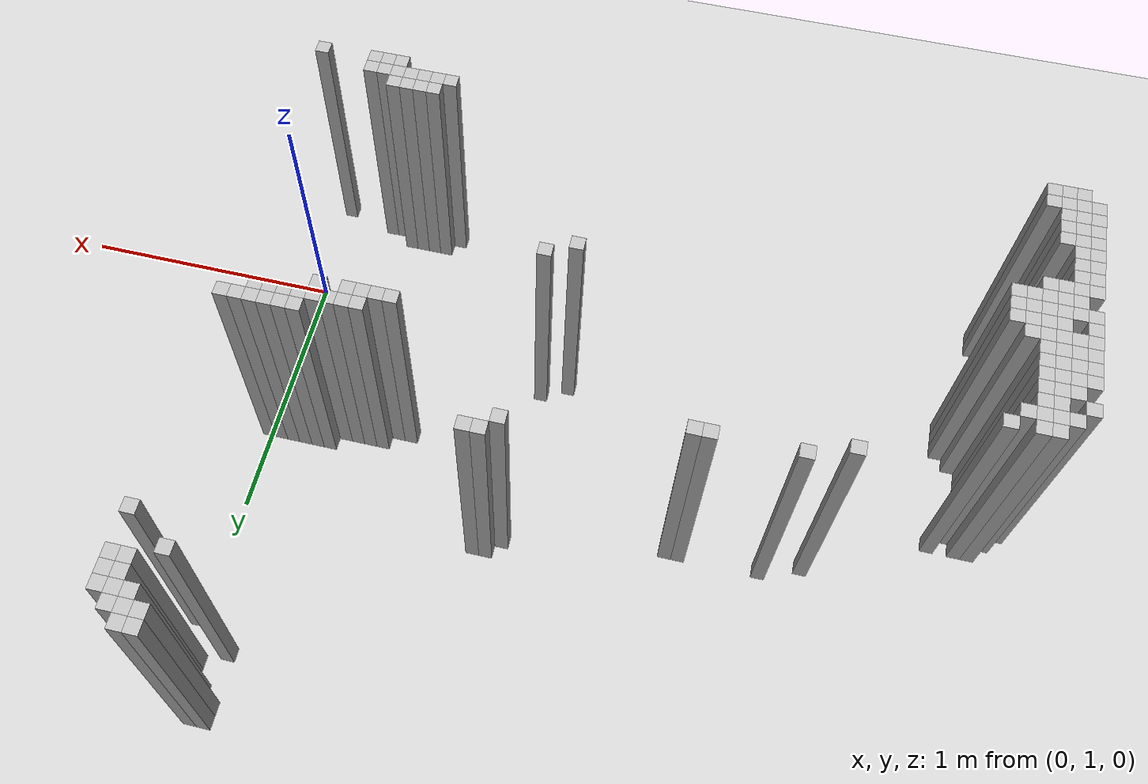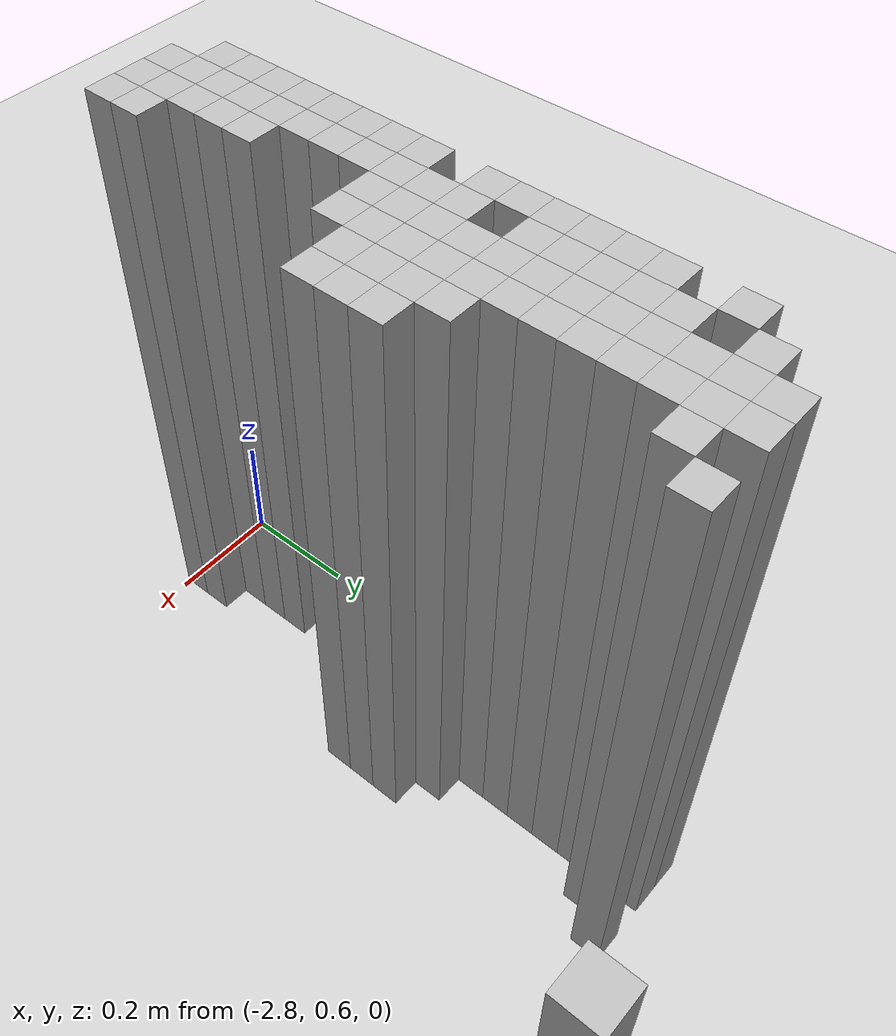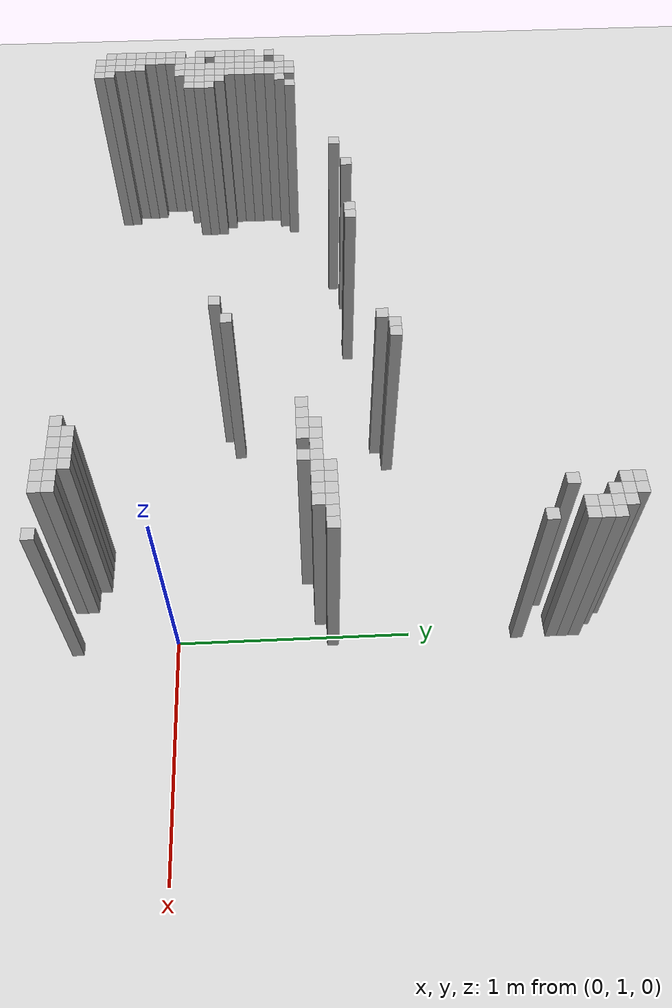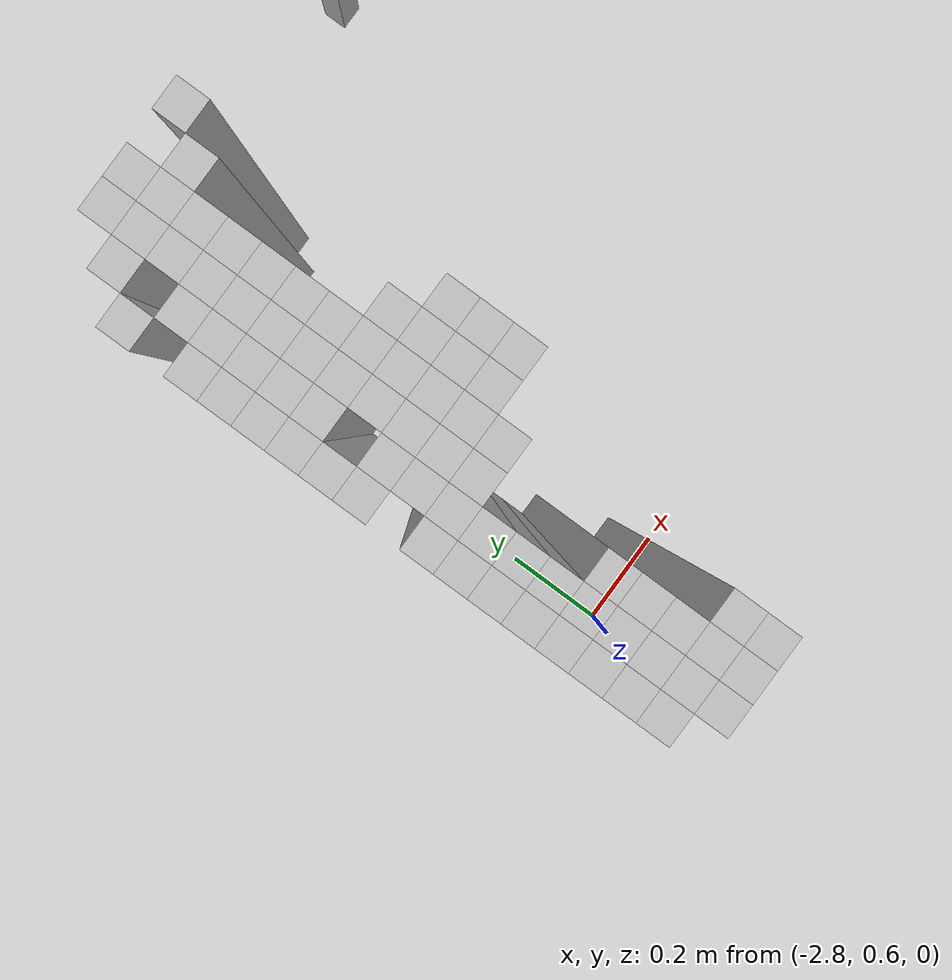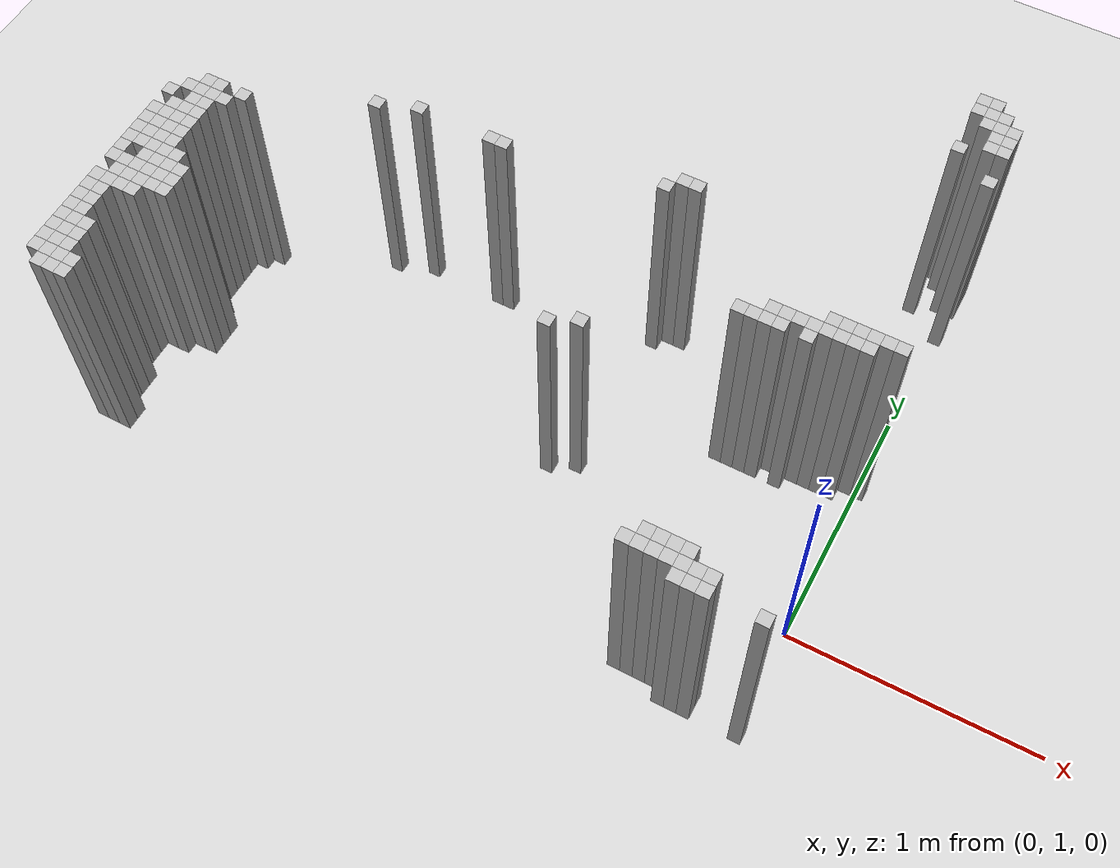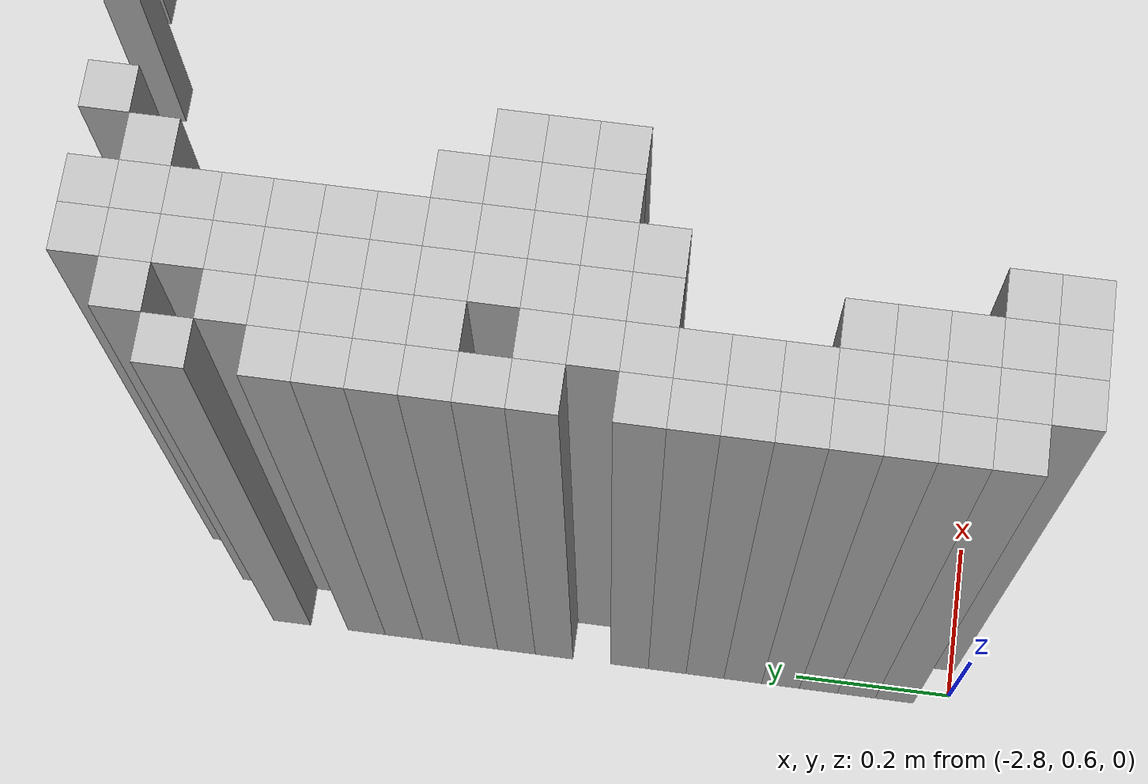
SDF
<sdf version="1.6">
 <world name="default">
  <include><uri>model://ground_plane</uri></include>
  <include><uri>model://sun</uri></include>
  <model name="wall_21">
   <static>true</static>
   <pose>-0.13999999999999968 2.82 0.5 0 0 0</pose>
   <link name="link">
    <collision name="collision"><geometry><box><size>0.05 0.05 1</size></box></geometry></collision>
    <visual name="visual"><geometry><box><size>0.05 0.05 1</size></box></geometry></visual>
   </link>
  </model>
  <model name="wall_22">
   <static>true</static>
   <pose>-0.08999999999999986 2.82 0.5 0 0 0</pose>
   <link name="link">
    <collision name="collision"><geometry><box><size>0.05 0.05 1</size></box></geometry></collision>
    <visual name="visual"><geometry><box><size>0.05 0.05 1</size></box></geometry></visual>
   </link>
  </model>
  <model name="wall_24">
   <static>true</static>
   <pose>-0.13999999999999968 2.77 0.5 0 0 0</pose>
   <link name="link">
    <collision name="collision"><geometry><box><size>0.05 0.05 1</size></box></geometry></collision>
    <visual name="visual"><geometry><box><size>0.05 0.05 1</size></box></geometry></visual>
   </link>
  </model>
  <model name="wall_25">
   <static>true</static>
   <pose>-0.08999999999999986 2.77 0.5 0 0 0</pose>
   <link name="link">
    <collision name="collision"><geometry><box><size>0.05 0.05 1</size></box></geometry></collision>
    <visual name="visual"><geometry><box><size>0.05 0.05 1</size></box></geometry></visual>
   </link>
  </model>
  <model name="wall_26">
   <static>true</static>
   <pose>-0.03999999999999959 2.77 0.5 0 0 0</pose>
   <link name="link">
    <collision name="collision"><geometry><box><size>0.05 0.05 1</size></box></geometry></collision>
    <visual name="visual"><geometry><box><size>0.05 0.05 1</size></box></geometry></visual>
   </link>
  </model>
  <model name="wall_30">
   <static>true</static>
   <pose>-0.08999999999999986 2.72 0.5 0 0 0</pose>
   <link name="link">
    <collision name="collision"><geometry><box><size>0.05 0.05 1</size></box></geometry></collision>
    <visual name="visual"><geometry><box><size>0.05 0.05 1</size></box></geometry></visual>
   </link>
  </model>
  <model name="wall_31">
   <static>true</static>
   <pose>-0.03999999999999959 2.72 0.5 0 0 0</pose>
   <link name="link">
    <collision name="collision"><geometry><box><size>0.05 0.05 1</size></box></geometry></collision>
    <visual name="visual"><geometry><box><size>0.05 0.05 1</size></box></geometry></visual>
   </link>
  </model>
  <model name="wall_32">
   <static>true</static>
   <pose>0.010000000000000231 2.72 0.5 0 0 0</pose>
   <link name="link">
    <collision name="collision"><geometry><box><size>0.05 0.05 1</size></box></geometry></collision>
    <visual name="visual"><geometry><box><size>0.05 0.05 1</size></box></geometry></visual>
   </link>
  </model>
  <model name="wall_34">
   <static>true</static>
   <pose>-0.03999999999999959 2.6700000000000004 0.5 0 0 0</pose>
   <link name="link">
    <collision name="collision"><geometry><box><size>0.05 0.05 1</size></box></geometry></collision>
    <visual name="visual"><geometry><box><size>0.05 0.05 1</size></box></geometry></visual>
   </link>
  </model>
  <model name="wall_35">
   <static>true</static>
   <pose>0.010000000000000231 2.6700000000000004 0.5 0 0 0</pose>
   <link name="link">
    <collision name="collision"><geometry><box><size>0.05 0.05 1</size></box></geometry></collision>
    <visual name="visual"><geometry><box><size>0.05 0.05 1</size></box></geometry></visual>
   </link>
  </model>
  <model name="wall_39">
   <static>true</static>
   <pose>-0.03999999999999959 2.6200000000000006 0.5 0 0 0</pose>
   <link name="link">
    <collision name="collision"><geometry><box><size>0.05 0.05 1</size></box></geometry></collision>
    <visual name="visual"><geometry><box><size>0.05 0.05 1</size></box></geometry></visual>
   </link>
  </model>
  <model name="wall_40">
   <static>true</static>
   <pose>0.010000000000000231 2.6200000000000006 0.5 0 0 0</pose>
   <link name="link">
    <collision name="collision"><geometry><box><size>0.05 0.05 1</size></box></geometry></collision>
    <visual name="visual"><geometry><box><size>0.05 0.05 1</size></box></geometry></visual>
   </link>
  </model>
  <model name="wall_41">
   <static>true</static>
   <pose>-0.13999999999999968 2.57 0.5 0 0 0</pose>
   <link name="link">
    <collision name="collision"><geometry><box><size>0.05 0.05 1</size></box></geometry></collision>
    <visual name="visual"><geometry><box><size>0.05 0.05 1</size></box></geometry></visual>
   </link>
  </model>
  <model name="wall_49">
   <static>true</static>
   <pose>0.010000000000000231 2.47 0.5 0 0 0</pose>
   <link name="link">
    <collision name="collision"><geometry><box><size>0.05 0.05 1</size></box></geometry></collision>
    <visual name="visual"><geometry><box><size>0.05 0.05 1</size></box></geometry></visual>
   </link>
  </model>
  <model name="wall_59">
   <static>true</static>
   <pose>-0.9399999999999997 1.9700000000000002 0.5 0 0 0</pose>
   <link name="link">
    <collision name="collision"><geometry><box><size>0.05 0.05 1</size></box></geometry></collision>
    <visual name="visual"><geometry><box><size>0.05 0.05 1</size></box></geometry></visual>
   </link>
  </model>
  <model name="wall_60">
   <static>true</static>
   <pose>-0.8899999999999997 1.9700000000000002 0.5 0 0 0</pose>
   <link name="link">
    <collision name="collision"><geometry><box><size>0.05 0.05 1</size></box></geometry></collision>
    <visual name="visual"><geometry><box><size>0.05 0.05 1</size></box></geometry></visual>
   </link>
  </model>
  <model name="wall_61">
   <static>true</static>
   <pose>-0.9899999999999998 1.9200000000000004 0.5 0 0 0</pose>
   <link name="link">
    <collision name="collision"><geometry><box><size>0.05 0.05 1</size></box></geometry></collision>
    <visual name="visual"><geometry><box><size>0.05 0.05 1</size></box></geometry></visual>
   </link>
  </model>
  <model name="wall_62">
   <static>true</static>
   <pose>-1.94 1.8199999999999998 0.5 0 0 0</pose>
   <link name="link">
    <collision name="collision"><geometry><box><size>0.05 0.05 1</size></box></geometry></collision>
    <visual name="visual"><geometry><box><size>0.05 0.05 1</size></box></geometry></visual>
   </link>
  </model>
  <model name="wall_63">
   <static>true</static>
   <pose>-1.6399999999999997 1.8199999999999998 0.5 0 0 0</pose>
   <link name="link">
    <collision name="collision"><geometry><box><size>0.05 0.05 1</size></box></geometry></collision>
    <visual name="visual"><geometry><box><size>0.05 0.05 1</size></box></geometry></visual>
   </link>
  </model>
  <model name="wall_64">
   <static>true</static>
   <pose>-1.5899999999999999 1.8199999999999998 0.5 0 0 0</pose>
   <link name="link">
    <collision name="collision"><geometry><box><size>0.05 0.05 1</size></box></geometry></collision>
    <visual name="visual"><geometry><box><size>0.05 0.05 1</size></box></geometry></visual>
   </link>
  </model>
  <model name="wall_71">
   <static>true</static>
   <pose>-2.09 1.77 0.5 0 0 0</pose>
   <link name="link">
    <collision name="collision"><geometry><box><size>0.05 0.05 1</size></box></geometry></collision>
    <visual name="visual"><geometry><box><size>0.05 0.05 1</size></box></geometry></visual>
   </link>
  </model>
  <model name="wall_82">
   <static>true</static>
   <pose>-0.23999999999999977 1.67 0.5 0 0 0</pose>
   <link name="link">
    <collision name="collision"><geometry><box><size>0.05 0.05 1</size></box></geometry></collision>
    <visual name="visual"><geometry><box><size>0.05 0.05 1</size></box></geometry></visual>
   </link>
  </model>
  <model name="wall_83">
   <static>true</static>
   <pose>-0.1899999999999995 1.67 0.5 0 0 0</pose>
   <link name="link">
    <collision name="collision"><geometry><box><size>0.05 0.05 1</size></box></geometry></collision>
    <visual name="visual"><geometry><box><size>0.05 0.05 1</size></box></geometry></visual>
   </link>
  </model>
  <model name="wall_84">
   <static>true</static>
   <pose>-0.13999999999999968 1.67 0.5 0 0 0</pose>
   <link name="link">
    <collision name="collision"><geometry><box><size>0.05 0.05 1</size></box></geometry></collision>
    <visual name="visual"><geometry><box><size>0.05 0.05 1</size></box></geometry></visual>
   </link>
  </model>
  <model name="wall_85">
   <static>true</static>
   <pose>-0.08999999999999986 1.67 0.5 0 0 0</pose>
   <link name="link">
    <collision name="collision"><geometry><box><size>0.05 0.05 1</size></box></geometry></collision>
    <visual name="visual"><geometry><box><size>0.05 0.05 1</size></box></geometry></visual>
   </link>
  </model>
  <model name="wall_86">
   <static>true</static>
   <pose>-0.03999999999999959 1.67 0.5 0 0 0</pose>
   <link name="link">
    <collision name="collision"><geometry><box><size>0.05 0.05 1</size></box></geometry></collision>
    <visual name="visual"><geometry><box><size>0.05 0.05 1</size></box></geometry></visual>
   </link>
  </model>
  <model name="wall_87">
   <static>true</static>
   <pose>0.010000000000000231 1.67 0.5 0 0 0</pose>
   <link name="link">
    <collision name="collision"><geometry><box><size>0.05 0.05 1</size></box></geometry></collision>
    <visual name="visual"><geometry><box><size>0.05 0.05 1</size></box></geometry></visual>
   </link>
  </model>
  <model name="wall_89">
   <static>true</static>
   <pose>-0.4399999999999995 1.62 0.5 0 0 0</pose>
   <link name="link">
    <collision name="collision"><geometry><box><size>0.05 0.05 1</size></box></geometry></collision>
    <visual name="visual"><geometry><box><size>0.05 0.05 1</size></box></geometry></visual>
   </link>
  </model>
  <model name="wall_90">
   <static>true</static>
   <pose>-0.3899999999999997 1.62 0.5 0 0 0</pose>
   <link name="link">
    <collision name="collision"><geometry><box><size>0.05 0.05 1</size></box></geometry></collision>
    <visual name="visual"><geometry><box><size>0.05 0.05 1</size></box></geometry></visual>
   </link>
  </model>
  <model name="wall_91">
   <static>true</static>
   <pose>-0.33999999999999986 1.62 0.5 0 0 0</pose>
   <link name="link">
    <collision name="collision"><geometry><box><size>0.05 0.05 1</size></box></geometry></collision>
    <visual name="visual"><geometry><box><size>0.05 0.05 1</size></box></geometry></visual>
   </link>
  </model>
  <model name="wall_92">
   <static>true</static>
   <pose>-0.2899999999999996 1.62 0.5 0 0 0</pose>
   <link name="link">
    <collision name="collision"><geometry><box><size>0.05 0.05 1</size></box></geometry></collision>
    <visual name="visual"><geometry><box><size>0.05 0.05 1</size></box></geometry></visual>
   </link>
  </model>
  <model name="wall_93">
   <static>true</static>
   <pose>-0.23999999999999977 1.62 0.5 0 0 0</pose>
   <link name="link">
    <collision name="collision"><geometry><box><size>0.05 0.05 1</size></box></geometry></collision>
    <visual name="visual"><geometry><box><size>0.05 0.05 1</size></box></geometry></visual>
   </link>
  </model>
  <model name="wall_94">
   <static>true</static>
   <pose>-0.1899999999999995 1.62 0.5 0 0 0</pose>
   <link name="link">
    <collision name="collision"><geometry><box><size>0.05 0.05 1</size></box></geometry></collision>
    <visual name="visual"><geometry><box><size>0.05 0.05 1</size></box></geometry></visual>
   </link>
  </model>
  <model name="wall_95">
   <static>true</static>
   <pose>-0.13999999999999968 1.62 0.5 0 0 0</pose>
   <link name="link">
    <collision name="collision"><geometry><box><size>0.05 0.05 1</size></box></geometry></collision>
    <visual name="visual"><geometry><box><size>0.05 0.05 1</size></box></geometry></visual>
   </link>
  </model>
  <model name="wall_96">
   <static>true</static>
   <pose>-0.08999999999999986 1.62 0.5 0 0 0</pose>
   <link name="link">
    <collision name="collision"><geometry><box><size>0.05 0.05 1</size></box></geometry></collision>
    <visual name="visual"><geometry><box><size>0.05 0.05 1</size></box></geometry></visual>
   </link>
  </model>
  <model name="wall_97">
   <static>true</static>
   <pose>-2.69 1.5699999999999998 0.5 0 0 0</pose>
   <link name="link">
    <collision name="collision"><geometry><box><size>0.05 0.05 1</size></box></geometry></collision>
    <visual name="visual"><geometry><box><size>0.05 0.05 1</size></box></geometry></visual>
   </link>
  </model>
  <model name="wall_98">
   <static>true</static>
   <pose>-2.6399999999999997 1.5699999999999998 0.5 0 0 0</pose>
   <link name="link">
    <collision name="collision"><geometry><box><size>0.05 0.05 1</size></box></geometry></collision>
    <visual name="visual"><geometry><box><size>0.05 0.05 1</size></box></geometry></visual>
   </link>
  </model>
  <model name="wall_99">
   <static>true</static>
   <pose>-2.54 1.5699999999999998 0.5 0 0 0</pose>
   <link name="link">
    <collision name="collision"><geometry><box><size>0.05 0.05 1</size></box></geometry></collision>
    <visual name="visual"><geometry><box><size>0.05 0.05 1</size></box></geometry></visual>
   </link>
  </model>
  <model name="wall_100">
   <static>true</static>
   <pose>-0.5399999999999996 1.5699999999999998 0.5 0 0 0</pose>
   <link name="link">
    <collision name="collision"><geometry><box><size>0.05 0.05 1</size></box></geometry></collision>
    <visual name="visual"><geometry><box><size>0.05 0.05 1</size></box></geometry></visual>
   </link>
  </model>
  <model name="wall_101">
   <static>true</static>
   <pose>-0.48999999999999977 1.5699999999999998 0.5 0 0 0</pose>
   <link name="link">
    <collision name="collision"><geometry><box><size>0.05 0.05 1</size></box></geometry></collision>
    <visual name="visual"><geometry><box><size>0.05 0.05 1</size></box></geometry></visual>
   </link>
  </model>
  <model name="wall_102">
   <static>true</static>
   <pose>-0.4399999999999995 1.5699999999999998 0.5 0 0 0</pose>
   <link name="link">
    <collision name="collision"><geometry><box><size>0.05 0.05 1</size></box></geometry></collision>
    <visual name="visual"><geometry><box><size>0.05 0.05 1</size></box></geometry></visual>
   </link>
  </model>
  <model name="wall_103">
   <static>true</static>
   <pose>-0.3899999999999997 1.5699999999999998 0.5 0 0 0</pose>
   <link name="link">
    <collision name="collision"><geometry><box><size>0.05 0.05 1</size></box></geometry></collision>
    <visual name="visual"><geometry><box><size>0.05 0.05 1</size></box></geometry></visual>
   </link>
  </model>
  <model name="wall_104">
   <static>true</static>
   <pose>-0.2899999999999996 1.5699999999999998 0.5 0 0 0</pose>
   <link name="link">
    <collision name="collision"><geometry><box><size>0.05 0.05 1</size></box></geometry></collision>
    <visual name="visual"><geometry><box><size>0.05 0.05 1</size></box></geometry></visual>
   </link>
  </model>
  <model name="wall_105">
   <static>true</static>
   <pose>-2.7399999999999998 1.52 0.5 0 0 0</pose>
   <link name="link">
    <collision name="collision"><geometry><box><size>0.05 0.05 1</size></box></geometry></collision>
    <visual name="visual"><geometry><box><size>0.05 0.05 1</size></box></geometry></visual>
   </link>
  </model>
  <model name="wall_106">
   <static>true</static>
   <pose>-2.69 1.52 0.5 0 0 0</pose>
   <link name="link">
    <collision name="collision"><geometry><box><size>0.05 0.05 1</size></box></geometry></collision>
    <visual name="visual"><geometry><box><size>0.05 0.05 1</size></box></geometry></visual>
   </link>
  </model>
  <model name="wall_107">
   <static>true</static>
   <pose>-2.6399999999999997 1.52 0.5 0 0 0</pose>
   <link name="link">
    <collision name="collision"><geometry><box><size>0.05 0.05 1</size></box></geometry></collision>
    <visual name="visual"><geometry><box><size>0.05 0.05 1</size></box></geometry></visual>
   </link>
  </model>
  <model name="wall_108">
   <static>true</static>
   <pose>-2.59 1.52 0.5 0 0 0</pose>
   <link name="link">
    <collision name="collision"><geometry><box><size>0.05 0.05 1</size></box></geometry></collision>
    <visual name="visual"><geometry><box><size>0.05 0.05 1</size></box></geometry></visual>
   </link>
  </model>
  <model name="wall_109">
   <static>true</static>
   <pose>-2.79 1.4700000000000002 0.5 0 0 0</pose>
   <link name="link">
    <collision name="collision"><geometry><box><size>0.05 0.05 1</size></box></geometry></collision>
    <visual name="visual"><geometry><box><size>0.05 0.05 1</size></box></geometry></visual>
   </link>
  </model>
  <model name="wall_110">
   <static>true</static>
   <pose>-2.69 1.4700000000000002 0.5 0 0 0</pose>
   <link name="link">
    <collision name="collision"><geometry><box><size>0.05 0.05 1</size></box></geometry></collision>
    <visual name="visual"><geometry><box><size>0.05 0.05 1</size></box></geometry></visual>
   </link>
  </model>
  <model name="wall_111">
   <static>true</static>
   <pose>-2.6399999999999997 1.4700000000000002 0.5 0 0 0</pose>
   <link name="link">
    <collision name="collision"><geometry><box><size>0.05 0.05 1</size></box></geometry></collision>
    <visual name="visual"><geometry><box><size>0.05 0.05 1</size></box></geometry></visual>
   </link>
  </model>
  <model name="wall_112">
   <static>true</static>
   <pose>-2.7399999999999998 1.42 0.5 0 0 0</pose>
   <link name="link">
    <collision name="collision"><geometry><box><size>0.05 0.05 1</size></box></geometry></collision>
    <visual name="visual"><geometry><box><size>0.05 0.05 1</size></box></geometry></visual>
   </link>
  </model>
  <model name="wall_113">
   <static>true</static>
   <pose>-2.69 1.42 0.5 0 0 0</pose>
   <link name="link">
    <collision name="collision"><geometry><box><size>0.05 0.05 1</size></box></geometry></collision>
    <visual name="visual"><geometry><box><size>0.05 0.05 1</size></box></geometry></visual>
   </link>
  </model>
  <model name="wall_114">
   <static>true</static>
   <pose>-2.6399999999999997 1.42 0.5 0 0 0</pose>
   <link name="link">
    <collision name="collision"><geometry><box><size>0.05 0.05 1</size></box></geometry></collision>
    <visual name="visual"><geometry><box><size>0.05 0.05 1</size></box></geometry></visual>
   </link>
  </model>
  <model name="wall_115">
   <static>true</static>
   <pose>-2.79 1.37 0.5 0 0 0</pose>
   <link name="link">
    <collision name="collision"><geometry><box><size>0.05 0.05 1</size></box></geometry></collision>
    <visual name="visual"><geometry><box><size>0.05 0.05 1</size></box></geometry></visual>
   </link>
  </model>
  <model name="wall_116">
   <static>true</static>
   <pose>-2.7399999999999998 1.37 0.5 0 0 0</pose>
   <link name="link">
    <collision name="collision"><geometry><box><size>0.05 0.05 1</size></box></geometry></collision>
    <visual name="visual"><geometry><box><size>0.05 0.05 1</size></box></geometry></visual>
   </link>
  </model>
  <model name="wall_117">
   <static>true</static>
   <pose>-2.69 1.37 0.5 0 0 0</pose>
   <link name="link">
    <collision name="collision"><geometry><box><size>0.05 0.05 1</size></box></geometry></collision>
    <visual name="visual"><geometry><box><size>0.05 0.05 1</size></box></geometry></visual>
   </link>
  </model>
  <model name="wall_118">
   <static>true</static>
   <pose>-2.6399999999999997 1.37 0.5 0 0 0</pose>
   <link name="link">
    <collision name="collision"><geometry><box><size>0.05 0.05 1</size></box></geometry></collision>
    <visual name="visual"><geometry><box><size>0.05 0.05 1</size></box></geometry></visual>
   </link>
  </model>
  <model name="wall_119">
   <static>true</static>
   <pose>-2.79 1.3199999999999998 0.5 0 0 0</pose>
   <link name="link">
    <collision name="collision"><geometry><box><size>0.05 0.05 1</size></box></geometry></collision>
    <visual name="visual"><geometry><box><size>0.05 0.05 1</size></box></geometry></visual>
   </link>
  </model>
  <model name="wall_120">
   <static>true</static>
   <pose>-2.7399999999999998 1.3199999999999998 0.5 0 0 0</pose>
   <link name="link">
    <collision name="collision"><geometry><box><size>0.05 0.05 1</size></box></geometry></collision>
    <visual name="visual"><geometry><box><size>0.05 0.05 1</size></box></geometry></visual>
   </link>
  </model>
  <model name="wall_121">
   <static>true</static>
   <pose>-2.69 1.3199999999999998 0.5 0 0 0</pose>
   <link name="link">
    <collision name="collision"><geometry><box><size>0.05 0.05 1</size></box></geometry></collision>
    <visual name="visual"><geometry><box><size>0.05 0.05 1</size></box></geometry></visual>
   </link>
  </model>
  <model name="wall_122">
   <static>true</static>
   <pose>-2.6399999999999997 1.3199999999999998 0.5 0 0 0</pose>
   <link name="link">
    <collision name="collision"><geometry><box><size>0.05 0.05 1</size></box></geometry></collision>
    <visual name="visual"><geometry><box><size>0.05 0.05 1</size></box></geometry></visual>
   </link>
  </model>
  <model name="wall_123">
   <static>true</static>
   <pose>-2.79 1.27 0.5 0 0 0</pose>
   <link name="link">
    <collision name="collision"><geometry><box><size>0.05 0.05 1</size></box></geometry></collision>
    <visual name="visual"><geometry><box><size>0.05 0.05 1</size></box></geometry></visual>
   </link>
  </model>
  <model name="wall_124">
   <static>true</static>
   <pose>-2.7399999999999998 1.27 0.5 0 0 0</pose>
   <link name="link">
    <collision name="collision"><geometry><box><size>0.05 0.05 1</size></box></geometry></collision>
    <visual name="visual"><geometry><box><size>0.05 0.05 1</size></box></geometry></visual>
   </link>
  </model>
  <model name="wall_125">
   <static>true</static>
   <pose>-2.69 1.27 0.5 0 0 0</pose>
   <link name="link">
    <collision name="collision"><geometry><box><size>0.05 0.05 1</size></box></geometry></collision>
    <visual name="visual"><geometry><box><size>0.05 0.05 1</size></box></geometry></visual>
   </link>
  </model>
  <model name="wall_126">
   <static>true</static>
   <pose>-2.6399999999999997 1.27 0.5 0 0 0</pose>
   <link name="link">
    <collision name="collision"><geometry><box><size>0.05 0.05 1</size></box></geometry></collision>
    <visual name="visual"><geometry><box><size>0.05 0.05 1</size></box></geometry></visual>
   </link>
  </model>
  <model name="wall_127">
   <static>true</static>
   <pose>-0.9899999999999998 1.27 0.5 0 0 0</pose>
   <link name="link">
    <collision name="collision"><geometry><box><size>0.05 0.05 1</size></box></geometry></collision>
    <visual name="visual"><geometry><box><size>0.05 0.05 1</size></box></geometry></visual>
   </link>
  </model>
  <model name="wall_128">
   <static>true</static>
   <pose>-2.79 1.2200000000000002 0.5 0 0 0</pose>
   <link name="link">
    <collision name="collision"><geometry><box><size>0.05 0.05 1</size></box></geometry></collision>
    <visual name="visual"><geometry><box><size>0.05 0.05 1</size></box></geometry></visual>
   </link>
  </model>
  <model name="wall_129">
   <static>true</static>
   <pose>-2.7399999999999998 1.2200000000000002 0.5 0 0 0</pose>
   <link name="link">
    <collision name="collision"><geometry><box><size>0.05 0.05 1</size></box></geometry></collision>
    <visual name="visual"><geometry><box><size>0.05 0.05 1</size></box></geometry></visual>
   </link>
  </model>
  <model name="wall_130">
   <static>true</static>
   <pose>-2.69 1.2200000000000002 0.5 0 0 0</pose>
   <link name="link">
    <collision name="collision"><geometry><box><size>0.05 0.05 1</size></box></geometry></collision>
    <visual name="visual"><geometry><box><size>0.05 0.05 1</size></box></geometry></visual>
   </link>
  </model>
  <model name="wall_131">
   <static>true</static>
   <pose>-2.6399999999999997 1.2200000000000002 0.5 0 0 0</pose>
   <link name="link">
    <collision name="collision"><geometry><box><size>0.05 0.05 1</size></box></geometry></collision>
    <visual name="visual"><geometry><box><size>0.05 0.05 1</size></box></geometry></visual>
   </link>
  </model>
  <model name="wall_132">
   <static>true</static>
   <pose>-2.59 1.2200000000000002 0.5 0 0 0</pose>
   <link name="link">
    <collision name="collision"><geometry><box><size>0.05 0.05 1</size></box></geometry></collision>
    <visual name="visual"><geometry><box><size>0.05 0.05 1</size></box></geometry></visual>
   </link>
  </model>
  <model name="wall_133">
   <static>true</static>
   <pose>-1.0899999999999999 1.2200000000000002 0.5 0 0 0</pose>
   <link name="link">
    <collision name="collision"><geometry><box><size>0.05 0.05 1</size></box></geometry></collision>
    <visual name="visual"><geometry><box><size>0.05 0.05 1</size></box></geometry></visual>
   </link>
  </model>
  <model name="wall_134">
   <static>true</static>
   <pose>-2.79 1.17 0.5 0 0 0</pose>
   <link name="link">
    <collision name="collision"><geometry><box><size>0.05 0.05 1</size></box></geometry></collision>
    <visual name="visual"><geometry><box><size>0.05 0.05 1</size></box></geometry></visual>
   </link>
  </model>
  <model name="wall_135">
   <static>true</static>
   <pose>-2.69 1.17 0.5 0 0 0</pose>
   <link name="link">
    <collision name="collision"><geometry><box><size>0.05 0.05 1</size></box></geometry></collision>
    <visual name="visual"><geometry><box><size>0.05 0.05 1</size></box></geometry></visual>
   </link>
  </model>
  <model name="wall_136">
   <static>true</static>
   <pose>-2.6399999999999997 1.17 0.5 0 0 0</pose>
   <link name="link">
    <collision name="collision"><geometry><box><size>0.05 0.05 1</size></box></geometry></collision>
    <visual name="visual"><geometry><box><size>0.05 0.05 1</size></box></geometry></visual>
   </link>
  </model>
  <model name="wall_137">
   <static>true</static>
   <pose>-2.59 1.17 0.5 0 0 0</pose>
   <link name="link">
    <collision name="collision"><geometry><box><size>0.05 0.05 1</size></box></geometry></collision>
    <visual name="visual"><geometry><box><size>0.05 0.05 1</size></box></geometry></visual>
   </link>
  </model>
  <model name="wall_138">
   <static>true</static>
   <pose>-2.54 1.17 0.5 0 0 0</pose>
   <link name="link">
    <collision name="collision"><geometry><box><size>0.05 0.05 1</size></box></geometry></collision>
    <visual name="visual"><geometry><box><size>0.05 0.05 1</size></box></geometry></visual>
   </link>
  </model>
  <model name="wall_139">
   <static>true</static>
   <pose>-2.79 1.12 0.5 0 0 0</pose>
   <link name="link">
    <collision name="collision"><geometry><box><size>0.05 0.05 1</size></box></geometry></collision>
    <visual name="visual"><geometry><box><size>0.05 0.05 1</size></box></geometry></visual>
   </link>
  </model>
  <model name="wall_140">
   <static>true</static>
   <pose>-2.7399999999999998 1.12 0.5 0 0 0</pose>
   <link name="link">
    <collision name="collision"><geometry><box><size>0.05 0.05 1</size></box></geometry></collision>
    <visual name="visual"><geometry><box><size>0.05 0.05 1</size></box></geometry></visual>
   </link>
  </model>
  <model name="wall_141">
   <static>true</static>
   <pose>-2.69 1.12 0.5 0 0 0</pose>
   <link name="link">
    <collision name="collision"><geometry><box><size>0.05 0.05 1</size></box></geometry></collision>
    <visual name="visual"><geometry><box><size>0.05 0.05 1</size></box></geometry></visual>
   </link>
  </model>
  <model name="wall_142">
   <static>true</static>
   <pose>-2.6399999999999997 1.12 0.5 0 0 0</pose>
   <link name="link">
    <collision name="collision"><geometry><box><size>0.05 0.05 1</size></box></geometry></collision>
    <visual name="visual"><geometry><box><size>0.05 0.05 1</size></box></geometry></visual>
   </link>
  </model>
  <model name="wall_143">
   <static>true</static>
   <pose>-2.59 1.12 0.5 0 0 0</pose>
   <link name="link">
    <collision name="collision"><geometry><box><size>0.05 0.05 1</size></box></geometry></collision>
    <visual name="visual"><geometry><box><size>0.05 0.05 1</size></box></geometry></visual>
   </link>
  </model>
  <model name="wall_144">
   <static>true</static>
   <pose>-2.54 1.12 0.5 0 0 0</pose>
   <link name="link">
    <collision name="collision"><geometry><box><size>0.05 0.05 1</size></box></geometry></collision>
    <visual name="visual"><geometry><box><size>0.05 0.05 1</size></box></geometry></visual>
   </link>
  </model>
  <model name="wall_146">
   <static>true</static>
   <pose>-2.7399999999999998 1.0699999999999998 0.5 0 0 0</pose>
   <link name="link">
    <collision name="collision"><geometry><box><size>0.05 0.05 1</size></box></geometry></collision>
    <visual name="visual"><geometry><box><size>0.05 0.05 1</size></box></geometry></visual>
   </link>
  </model>
  <model name="wall_147">
   <static>true</static>
   <pose>-2.69 1.0699999999999998 0.5 0 0 0</pose>
   <link name="link">
    <collision name="collision"><geometry><box><size>0.05 0.05 1</size></box></geometry></collision>
    <visual name="visual"><geometry><box><size>0.05 0.05 1</size></box></geometry></visual>
   </link>
  </model>
  <model name="wall_148">
   <static>true</static>
   <pose>-2.6399999999999997 1.0699999999999998 0.5 0 0 0</pose>
   <link name="link">
    <collision name="collision"><geometry><box><size>0.05 0.05 1</size></box></geometry></collision>
    <visual name="visual"><geometry><box><size>0.05 0.05 1</size></box></geometry></visual>
   </link>
  </model>
  <model name="wall_149">
   <static>true</static>
   <pose>-2.59 1.0699999999999998 0.5 0 0 0</pose>
   <link name="link">
    <collision name="collision"><geometry><box><size>0.05 0.05 1</size></box></geometry></collision>
    <visual name="visual"><geometry><box><size>0.05 0.05 1</size></box></geometry></visual>
   </link>
  </model>
  <model name="wall_150">
   <static>true</static>
   <pose>-2.54 1.0699999999999998 0.5 0 0 0</pose>
   <link name="link">
    <collision name="collision"><geometry><box><size>0.05 0.05 1</size></box></geometry></collision>
    <visual name="visual"><geometry><box><size>0.05 0.05 1</size></box></geometry></visual>
   </link>
  </model>
  <model name="wall_152">
   <static>true</static>
   <pose>-2.79 1.02 0.5 0 0 0</pose>
   <link name="link">
    <collision name="collision"><geometry><box><size>0.05 0.05 1</size></box></geometry></collision>
    <visual name="visual"><geometry><box><size>0.05 0.05 1</size></box></geometry></visual>
   </link>
  </model>
  <model name="wall_153">
   <static>true</static>
   <pose>-2.7399999999999998 1.02 0.5 0 0 0</pose>
   <link name="link">
    <collision name="collision"><geometry><box><size>0.05 0.05 1</size></box></geometry></collision>
    <visual name="visual"><geometry><box><size>0.05 0.05 1</size></box></geometry></visual>
   </link>
  </model>
  <model name="wall_154">
   <static>true</static>
   <pose>-2.69 1.02 0.5 0 0 0</pose>
   <link name="link">
    <collision name="collision"><geometry><box><size>0.05 0.05 1</size></box></geometry></collision>
    <visual name="visual"><geometry><box><size>0.05 0.05 1</size></box></geometry></visual>
   </link>
  </model>
  <model name="wall_155">
   <static>true</static>
   <pose>-2.6399999999999997 1.02 0.5 0 0 0</pose>
   <link name="link">
    <collision name="collision"><geometry><box><size>0.05 0.05 1</size></box></geometry></collision>
    <visual name="visual"><geometry><box><size>0.05 0.05 1</size></box></geometry></visual>
   </link>
  </model>
  <model name="wall_158">
   <static>true</static>
   <pose>-2.79 0.9700000000000002 0.5 0 0 0</pose>
   <link name="link">
    <collision name="collision"><geometry><box><size>0.05 0.05 1</size></box></geometry></collision>
    <visual name="visual"><geometry><box><size>0.05 0.05 1</size></box></geometry></visual>
   </link>
  </model>
  <model name="wall_159">
   <static>true</static>
   <pose>-2.7399999999999998 0.9700000000000002 0.5 0 0 0</pose>
   <link name="link">
    <collision name="collision"><geometry><box><size>0.05 0.05 1</size></box></geometry></collision>
    <visual name="visual"><geometry><box><size>0.05 0.05 1</size></box></geometry></visual>
   </link>
  </model>
  <model name="wall_162">
   <static>true</static>
   <pose>-2.79 0.9199999999999999 0.5 0 0 0</pose>
   <link name="link">
    <collision name="collision"><geometry><box><size>0.05 0.05 1</size></box></geometry></collision>
    <visual name="visual"><geometry><box><size>0.05 0.05 1</size></box></geometry></visual>
   </link>
  </model>
  <model name="wall_163">
   <static>true</static>
   <pose>-2.7399999999999998 0.9199999999999999 0.5 0 0 0</pose>
   <link name="link">
    <collision name="collision"><geometry><box><size>0.05 0.05 1</size></box></geometry></collision>
    <visual name="visual"><geometry><box><size>0.05 0.05 1</size></box></geometry></visual>
   </link>
  </model>
  <model name="wall_168">
   <static>true</static>
   <pose>-2.79 0.8700000000000001 0.5 0 0 0</pose>
   <link name="link">
    <collision name="collision"><geometry><box><size>0.05 0.05 1</size></box></geometry></collision>
    <visual name="visual"><geometry><box><size>0.05 0.05 1</size></box></geometry></visual>
   </link>
  </model>
  <model name="wall_169">
   <static>true</static>
   <pose>-2.7399999999999998 0.8700000000000001 0.5 0 0 0</pose>
   <link name="link">
    <collision name="collision"><geometry><box><size>0.05 0.05 1</size></box></geometry></collision>
    <visual name="visual"><geometry><box><size>0.05 0.05 1</size></box></geometry></visual>
   </link>
  </model>
  <model name="wall_175">
   <static>true</static>
   <pose>-2.79 0.8199999999999998 0.5 0 0 0</pose>
   <link name="link">
    <collision name="collision"><geometry><box><size>0.05 0.05 1</size></box></geometry></collision>
    <visual name="visual"><geometry><box><size>0.05 0.05 1</size></box></geometry></visual>
   </link>
  </model>
  <model name="wall_176">
   <static>true</static>
   <pose>-2.7399999999999998 0.8199999999999998 0.5 0 0 0</pose>
   <link name="link">
    <collision name="collision"><geometry><box><size>0.05 0.05 1</size></box></geometry></collision>
    <visual name="visual"><geometry><box><size>0.05 0.05 1</size></box></geometry></visual>
   </link>
  </model>
  <model name="wall_177">
   <static>true</static>
   <pose>-2.69 0.8199999999999998 0.5 0 0 0</pose>
   <link name="link">
    <collision name="collision"><geometry><box><size>0.05 0.05 1</size></box></geometry></collision>
    <visual name="visual"><geometry><box><size>0.05 0.05 1</size></box></geometry></visual>
   </link>
  </model>
  <model name="wall_189">
   <static>true</static>
   <pose>-2.79 0.77 0.5 0 0 0</pose>
   <link name="link">
    <collision name="collision"><geometry><box><size>0.05 0.05 1</size></box></geometry></collision>
    <visual name="visual"><geometry><box><size>0.05 0.05 1</size></box></geometry></visual>
   </link>
  </model>
  <model name="wall_190">
   <static>true</static>
   <pose>-2.7399999999999998 0.77 0.5 0 0 0</pose>
   <link name="link">
    <collision name="collision"><geometry><box><size>0.05 0.05 1</size></box></geometry></collision>
    <visual name="visual"><geometry><box><size>0.05 0.05 1</size></box></geometry></visual>
   </link>
  </model>
  <model name="wall_191">
   <static>true</static>
   <pose>-2.69 0.77 0.5 0 0 0</pose>
   <link name="link">
    <collision name="collision"><geometry><box><size>0.05 0.05 1</size></box></geometry></collision>
    <visual name="visual"><geometry><box><size>0.05 0.05 1</size></box></geometry></visual>
   </link>
  </model>
  <model name="wall_204">
   <static>true</static>
   <pose>-2.79 0.7200000000000002 0.5 0 0 0</pose>
   <link name="link">
    <collision name="collision"><geometry><box><size>0.05 0.05 1</size></box></geometry></collision>
    <visual name="visual"><geometry><box><size>0.05 0.05 1</size></box></geometry></visual>
   </link>
  </model>
  <model name="wall_205">
   <static>true</static>
   <pose>-2.7399999999999998 0.7200000000000002 0.5 0 0 0</pose>
   <link name="link">
    <collision name="collision"><geometry><box><size>0.05 0.05 1</size></box></geometry></collision>
    <visual name="visual"><geometry><box><size>0.05 0.05 1</size></box></geometry></visual>
   </link>
  </model>
  <model name="wall_206">
   <static>true</static>
   <pose>-2.69 0.7200000000000002 0.5 0 0 0</pose>
   <link name="link">
    <collision name="collision"><geometry><box><size>0.05 0.05 1</size></box></geometry></collision>
    <visual name="visual"><geometry><box><size>0.05 0.05 1</size></box></geometry></visual>
   </link>
  </model>
  <model name="wall_215">
   <static>true</static>
   <pose>-2.79 0.6699999999999999 0.5 0 0 0</pose>
   <link name="link">
    <collision name="collision"><geometry><box><size>0.05 0.05 1</size></box></geometry></collision>
    <visual name="visual"><geometry><box><size>0.05 0.05 1</size></box></geometry></visual>
   </link>
  </model>
  <model name="wall_216">
   <static>true</static>
   <pose>-2.7399999999999998 0.6699999999999999 0.5 0 0 0</pose>
   <link name="link">
    <collision name="collision"><geometry><box><size>0.05 0.05 1</size></box></geometry></collision>
    <visual name="visual"><geometry><box><size>0.05 0.05 1</size></box></geometry></visual>
   </link>
  </model>
  <model name="wall_217">
   <static>true</static>
   <pose>-2.69 0.6699999999999999 0.5 0 0 0</pose>
   <link name="link">
    <collision name="collision"><geometry><box><size>0.05 0.05 1</size></box></geometry></collision>
    <visual name="visual"><geometry><box><size>0.05 0.05 1</size></box></geometry></visual>
   </link>
  </model>
  <model name="wall_218">
   <static>true</static>
   <pose>-2.6399999999999997 0.6699999999999999 0.5 0 0 0</pose>
   <link name="link">
    <collision name="collision"><geometry><box><size>0.05 0.05 1</size></box></geometry></collision>
    <visual name="visual"><geometry><box><size>0.05 0.05 1</size></box></geometry></visual>
   </link>
  </model>
  <model name="wall_219">
   <static>true</static>
   <pose>-0.4399999999999995 0.6699999999999999 0.5 0 0 0</pose>
   <link name="link">
    <collision name="collision"><geometry><box><size>0.05 0.05 1</size></box></geometry></collision>
    <visual name="visual"><geometry><box><size>0.05 0.05 1</size></box></geometry></visual>
   </link>
  </model>
  <model name="wall_220">
   <static>true</static>
   <pose>-0.3899999999999997 0.6699999999999999 0.5 0 0 0</pose>
   <link name="link">
    <collision name="collision"><geometry><box><size>0.05 0.05 1</size></box></geometry></collision>
    <visual name="visual"><geometry><box><size>0.05 0.05 1</size></box></geometry></visual>
   </link>
  </model>
  <model name="wall_221">
   <static>true</static>
   <pose>-0.33999999999999986 0.6699999999999999 0.5 0 0 0</pose>
   <link name="link">
    <collision name="collision"><geometry><box><size>0.05 0.05 1</size></box></geometry></collision>
    <visual name="visual"><geometry><box><size>0.05 0.05 1</size></box></geometry></visual>
   </link>
  </model>
  <model name="wall_222">
   <static>true</static>
   <pose>-0.2899999999999996 0.6699999999999999 0.5 0 0 0</pose>
   <link name="link">
    <collision name="collision"><geometry><box><size>0.05 0.05 1</size></box></geometry></collision>
    <visual name="visual"><geometry><box><size>0.05 0.05 1</size></box></geometry></visual>
   </link>
  </model>
  <model name="wall_230">
   <static>true</static>
   <pose>-2.7399999999999998 0.6200000000000001 0.5 0 0 0</pose>
   <link name="link">
    <collision name="collision"><geometry><box><size>0.05 0.05 1</size></box></geometry></collision>
    <visual name="visual"><geometry><box><size>0.05 0.05 1</size></box></geometry></visual>
   </link>
  </model>
  <model name="wall_231">
   <static>true</static>
   <pose>-2.69 0.6200000000000001 0.5 0 0 0</pose>
   <link name="link">
    <collision name="collision"><geometry><box><size>0.05 0.05 1</size></box></geometry></collision>
    <visual name="visual"><geometry><box><size>0.05 0.05 1</size></box></geometry></visual>
   </link>
  </model>
  <model name="wall_232">
   <static>true</static>
   <pose>-2.6399999999999997 0.6200000000000001 0.5 0 0 0</pose>
   <link name="link">
    <collision name="collision"><geometry><box><size>0.05 0.05 1</size></box></geometry></collision>
    <visual name="visual"><geometry><box><size>0.05 0.05 1</size></box></geometry></visual>
   </link>
  </model>
  <model name="wall_233">
   <static>true</static>
   <pose>-0.48999999999999977 0.6200000000000001 0.5 0 0 0</pose>
   <link name="link">
    <collision name="collision"><geometry><box><size>0.05 0.05 1</size></box></geometry></collision>
    <visual name="visual"><geometry><box><size>0.05 0.05 1</size></box></geometry></visual>
   </link>
  </model>
  <model name="wall_234">
   <static>true</static>
   <pose>-0.4399999999999995 0.6200000000000001 0.5 0 0 0</pose>
   <link name="link">
    <collision name="collision"><geometry><box><size>0.05 0.05 1</size></box></geometry></collision>
    <visual name="visual"><geometry><box><size>0.05 0.05 1</size></box></geometry></visual>
   </link>
  </model>
  <model name="wall_235">
   <static>true</static>
   <pose>-0.3899999999999997 0.6200000000000001 0.5 0 0 0</pose>
   <link name="link">
    <collision name="collision"><geometry><box><size>0.05 0.05 1</size></box></geometry></collision>
    <visual name="visual"><geometry><box><size>0.05 0.05 1</size></box></geometry></visual>
   </link>
  </model>
  <model name="wall_236">
   <static>true</static>
   <pose>-0.33999999999999986 0.6200000000000001 0.5 0 0 0</pose>
   <link name="link">
    <collision name="collision"><geometry><box><size>0.05 0.05 1</size></box></geometry></collision>
    <visual name="visual"><geometry><box><size>0.05 0.05 1</size></box></geometry></visual>
   </link>
  </model>
  <model name="wall_237">
   <static>true</static>
   <pose>-0.2899999999999996 0.6200000000000001 0.5 0 0 0</pose>
   <link name="link">
    <collision name="collision"><geometry><box><size>0.05 0.05 1</size></box></geometry></collision>
    <visual name="visual"><geometry><box><size>0.05 0.05 1</size></box></geometry></visual>
   </link>
  </model>
  <model name="wall_238">
   <static>true</static>
   <pose>-0.23999999999999977 0.6200000000000001 0.5 0 0 0</pose>
   <link name="link">
    <collision name="collision"><geometry><box><size>0.05 0.05 1</size></box></geometry></collision>
    <visual name="visual"><geometry><box><size>0.05 0.05 1</size></box></geometry></visual>
   </link>
  </model>
  <model name="wall_239">
   <static>true</static>
   <pose>-0.1899999999999995 0.6200000000000001 0.5 0 0 0</pose>
   <link name="link">
    <collision name="collision"><geometry><box><size>0.05 0.05 1</size></box></geometry></collision>
    <visual name="visual"><geometry><box><size>0.05 0.05 1</size></box></geometry></visual>
   </link>
  </model>
  <model name="wall_251">
   <static>true</static>
   <pose>-0.2899999999999996 0.5699999999999998 0.5 0 0 0</pose>
   <link name="link">
    <collision name="collision"><geometry><box><size>0.05 0.05 1</size></box></geometry></collision>
    <visual name="visual"><geometry><box><size>0.05 0.05 1</size></box></geometry></visual>
   </link>
  </model>
  <model name="wall_252">
   <static>true</static>
   <pose>-0.23999999999999977 0.5699999999999998 0.5 0 0 0</pose>
   <link name="link">
    <collision name="collision"><geometry><box><size>0.05 0.05 1</size></box></geometry></collision>
    <visual name="visual"><geometry><box><size>0.05 0.05 1</size></box></geometry></visual>
   </link>
  </model>
  <model name="wall_253">
   <static>true</static>
   <pose>-0.1899999999999995 0.5699999999999998 0.5 0 0 0</pose>
   <link name="link">
    <collision name="collision"><geometry><box><size>0.05 0.05 1</size></box></geometry></collision>
    <visual name="visual"><geometry><box><size>0.05 0.05 1</size></box></geometry></visual>
   </link>
  </model>
  <model name="wall_254">
   <static>true</static>
   <pose>0.010000000000000231 0.5699999999999998 0.5 0 0 0</pose>
   <link name="link">
    <collision name="collision"><geometry><box><size>0.05 0.05 1</size></box></geometry></collision>
    <visual name="visual"><geometry><box><size>0.05 0.05 1</size></box></geometry></visual>
   </link>
  </model>
 </world>
</sdf>
